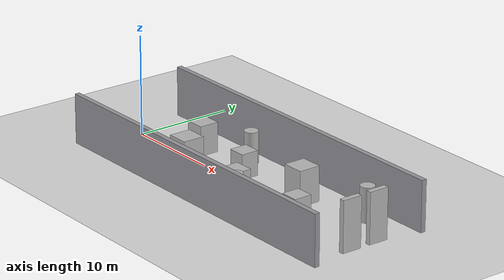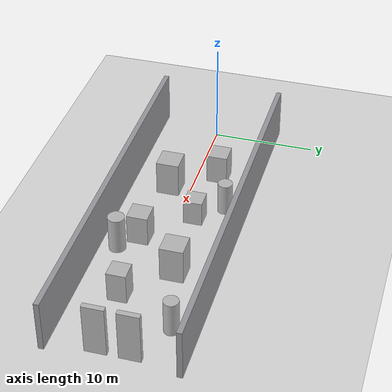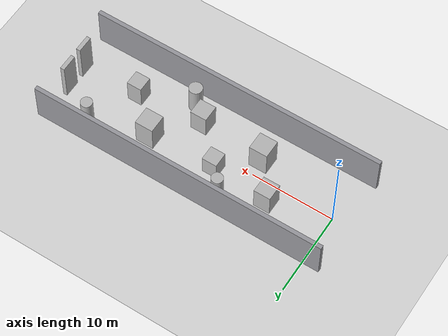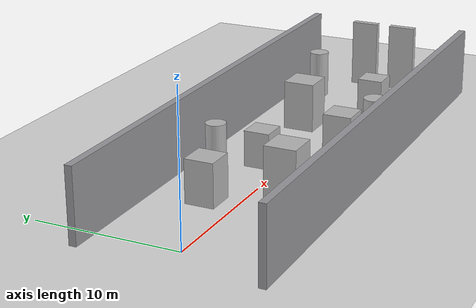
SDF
<sdf version="1.10">
 <world name="obstacle_avoidance">
  <physics type="ode">
   <max_step_size>0.0040000000000000001</max_step_size>
   <real_time_factor>1</real_time_factor>
   <real_time_update_rate>250</real_time_update_rate>
  </physics>
  <gravity>0 0 -9.8000000000000007</gravity>
  <magnetic_field>6.0000000000000002e-06 2.3e-05 -4.1999999999999998e-05</magnetic_field>
  <atmosphere type="adiabatic"/>
  <scene>
   <grid>true</grid>
   <ambient>0.449999988 0.449999988 0.449999988 1</ambient>
   <background>0.74000001 0.769999981 0.819999993 1</background>
   <shadows>true</shadows>
  </scene>
  <spherical_coordinates>
   <surface_model>EARTH_WGS84</surface_model>
   <world_frame_orientation>ENU</world_frame_orientation>
   <latitude_deg>47.397971057728974</latitude_deg>
   <longitude_deg>8.5461637398001464</longitude_deg>
   <elevation>0</elevation>
   <heading_deg>0</heading_deg>
  </spherical_coordinates>
  <model name="ground_plane">
   <static>true</static>
   <link name="link">
    <collision name="collision">
     <geometry><plane><normal>0 0 1</normal><size>1 1</size></plane></geometry>
    </collision>
    <visual name="visual">
     <geometry><plane><normal>0 0 1</normal><size>120 120</size></plane></geometry>
     <material>
      <ambient>0.850000024 0.850000024 0.850000024 1</ambient>
      <diffuse>0.850000024 0.850000024 0.850000024 1</diffuse>
      <specular>0.400000006 0.400000006 0.400000006 1</specular>
     </material>
    </visual>
    <inertial>
     <mass>1</mass>
     <inertia><ixx>1</ixx><ixy>0</ixy><ixz>0</ixz><iyy>1</iyy><iyz>0</iyz><izz>1</izz></inertia>
    </inertial>
   </link>
  </model>
  <model name="lane_left_wall">
   <static>true</static>
   <pose>16 6 2.5 0 0 0</pose>
   <link name="link">
    <collision name="collision"><geometry><box><size>36 0.5 5</size></box></geometry></collision>
    <visual name="visual">
     <geometry><box><size>36 0.5 5</size></box></geometry>
     <material>
      <ambient>0.5 0.5 0.519999981 1</ambient>
      <diffuse>0.600000024 0.600000024 0.620000005 1</diffuse>
     </material>
    </visual>
    <inertial>
     <mass>1</mass>
     <inertia><ixx>1</ixx><ixy>0</ixy><ixz>0</ixz><iyy>1</iyy><iyz>0</iyz><izz>1</izz></inertia>
    </inertial>
   </link>
  </model>
  <model name="lane_right_wall">
   <static>true</static>
   <pose>16 -6 2.5 0 0 0</pose>
   <link name="link">
    <collision name="collision"><geometry><box><size>36 0.5 5</size></box></geometry></collision>
    <visual name="visual">
     <geometry><box><size>36 0.5 5</size></box></geometry>
     <material>
      <ambient>0.5 0.5 0.519999981 1</ambient>
      <diffuse>0.600000024 0.600000024 0.620000005 1</diffuse>
     </material>
    </visual>
    <inertial>
     <mass>1</mass>
     <inertia><ixx>1</ixx><ixy>0</ixy><ixz>0</ixz><iyy>1</iyy><iyz>0</iyz><izz>1</izz></inertia>
    </inertial>
   </link>
  </model>
  <model name="block_01">
   <static>true</static>
   <pose>7 2.1000000000000001 1.5 0 0 0</pose>
   <link name="link">
    <collision name="collision"><geometry><box><size>2 2 3</size></box></geometry></collision>
    <visual name="visual"><geometry><box><size>2 2 3</size></box></geometry></visual>
    <inertial>
     <mass>1</mass>
     <inertia><ixx>1</ixx><ixy>0</ixy><ixz>0</ixz><iyy>1</iyy><iyz>0</iyz><izz>1</izz></inertia>
    </inertial>
   </link>
  </model>
  <model name="block_02">
   <static>true</static>
   <pose>10 -2 1.75 0 0 0</pose>
   <link name="link">
    <collision name="collision">
     <geometry><box><size>2.2000000000000002 2.2000000000000002 3.5</size></box></geometry>
    </collision>
    <visual name="visual">
     <geometry><box><size>2.2000000000000002 2.2000000000000002 3.5</size></box></geometry>
    </visual>
    <inertial>
     <mass>1</mass>
     <inertia><ixx>1</ixx><ixy>0</ixy><ixz>0</ixz><iyy>1</iyy><iyz>0</iyz><izz>1</izz></inertia>
    </inertial>
   </link>
  </model>
  <model name="block_03">
   <static>true</static>
   <pose>14 1.6000000000000001 1.25 0 0 0</pose>
   <link name="link">
    <collision name="collision"><geometry><box><size>1.8 1.8 2.5</size></box></geometry></collision>
    <visual name="visual"><geometry><box><size>1.8 1.8 2.5</size></box></geometry></visual>
    <inertial>
     <mass>1</mass>
     <inertia><ixx>1</ixx><ixy>0</ixy><ixz>0</ixz><iyy>1</iyy><iyz>0</iyz><izz>1</izz></inertia>
    </inertial>
   </link>
  </model>
  <model name="block_04">
   <static>true</static>
   <pose>18 -2.5 1.5 0 0 0</pose>
   <link name="link">
    <collision name="collision"><geometry><box><size>2 2 3</size></box></geometry></collision>
    <visual name="visual"><geometry><box><size>2 2 3</size></box></geometry></visual>
    <inertial>
     <mass>1</mass>
     <inertia><ixx>1</ixx><ixy>0</ixy><ixz>0</ixz><iyy>1</iyy><iyz>0</iyz><izz>1</izz></inertia>
    </inertial>
   </link>
  </model>
  <model name="block_05">
   <static>true</static>
   <pose>22 2 1.75 0 0 0</pose>
   <link name="link">
    <collision name="collision">
     <geometry><box><size>2.2000000000000002 2.2000000000000002 3.5</size></box></geometry>
    </collision>
    <visual name="visual">
     <geometry><box><size>2.2000000000000002 2.2000000000000002 3.5</size></box></geometry>
    </visual>
    <inertial>
     <mass>1</mass>
     <inertia><ixx>1</ixx><ixy>0</ixy><ixz>0</ixz><iyy>1</iyy><iyz>0</iyz><izz>1</izz></inertia>
    </inertial>
   </link>
  </model>
  <model name="block_06">
   <static>true</static>
   <pose>26 -1.8 1.5 0 0 0</pose>
   <link name="link">
    <collision name="collision"><geometry><box><size>1.8 1.8 3</size></box></geometry></collision>
    <visual name="visual"><geometry><box><size>1.8 1.8 3</size></box></geometry></visual>
    <inertial>
     <mass>1</mass>
     <inertia><ixx>1</ixx><ixy>0</ixy><ixz>0</ixz><iyy>1</iyy><iyz>0</iyz><izz>1</izz></inertia>
    </inertial>
   </link>
  </model>
  <model name="cyl_01">
   <static>true</static>
   <pose>12 4 1.6000000000000001 0 0 0</pose>
   <link name="link">
    <collision name="collision">
     <geometry>
      <cylinder><radius>0.69999999999999996</radius><length>3.2000000000000002</length></cylinder>
     </geometry>
    </collision>
    <visual name="visual">
     <geometry>
      <cylinder><radius>0.69999999999999996</radius><length>3.2000000000000002</length></cylinder>
     </geometry>
    </visual>
    <inertial>
     <mass>1</mass>
     <inertia><ixx>1</ixx><ixy>0</ixy><ixz>0</ixz><iyy>1</iyy><iyz>0</iyz><izz>1</izz></inertia>
    </inertial>
   </link>
  </model>
  <model name="cyl_02">
   <static>true</static>
   <pose>20 -4.0999999999999996 1.8 0 0 0</pose>
   <link name="link">
    <collision name="collision">
     <geometry>
      <cylinder><radius>0.80000000000000004</radius><length>3.6000000000000001</length></cylinder>
     </geometry>
    </collision>
    <visual name="visual">
     <geometry>
      <cylinder><radius>0.80000000000000004</radius><length>3.6000000000000001</length></cylinder>
     </geometry>
    </visual>
    <inertial>
     <mass>1</mass>
     <inertia><ixx>1</ixx><ixy>0</ixy><ixz>0</ixz><iyy>1</iyy><iyz>0</iyz><izz>1</izz></inertia>
    </inertial>
   </link>
  </model>
  <model name="cyl_03">
   <static>true</static>
   <pose>29 3.7999999999999998 1.7 0 0 0</pose>
   <link name="link">
    <collision name="collision">
     <geometry>
      <cylinder><radius>0.69999999999999996</radius><length>3.3999999999999999</length></cylinder>
     </geometry>
    </collision>
    <visual name="visual">
     <geometry>
      <cylinder><radius>0.69999999999999996</radius><length>3.3999999999999999</length></cylinder>
     </geometry>
    </visual>
    <inertial>
     <mass>1</mass>
     <inertia><ixx>1</ixx><ixy>0</ixy><ixz>0</ixz><iyy>1</iyy><iyz>0</iyz><izz>1</izz></inertia>
    </inertial>
   </link>
  </model>
  <model name="goal_gate_left">
   <static>true</static>
   <pose>33 1.5 2.5 0 0 0</pose>
   <link name="link">
    <collision name="collision"><geometry><box><size>0.5 2 5</size></box></geometry></collision>
    <visual name="visual"><geometry><box><size>0.5 2 5</size></box></geometry></visual>
    <inertial>
     <mass>1</mass>
     <inertia><ixx>1</ixx><ixy>0</ixy><ixz>0</ixz><iyy>1</iyy><iyz>0</iyz><izz>1</izz></inertia>
    </inertial>
   </link>
  </model>
  <model name="goal_gate_right">
   <static>true</static>
   <pose>33 -1.5 2.5 0 0 0</pose>
   <link name="link">
    <collision name="collision"><geometry><box><size>0.5 2 5</size></box></geometry></collision>
    <visual name="visual"><geometry><box><size>0.5 2 5</size></box></geometry></visual>
    <inertial>
     <mass>1</mass>
     <inertia><ixx>1</ixx><ixy>0</ixy><ixz>0</ixz><iyy>1</iyy><iyz>0</iyz><izz>1</izz></inertia>
    </inertial>
   </link>
  </model>
  <light name="sunUTC" type="directional">
   <pose>0 0 500 0 0 0</pose>
   <intensity>1</intensity>
   <direction>0.001 0.625 -0.78000000000000003</direction>
   <diffuse>0.899999976 0.899999976 0.899999976 1</diffuse>
   <specular>0.25 0.25 0.25 1</specular>
   <attenuation><range>2000</range><linear>0</linear><constant>1</constant><quadratic>0</quadratic></attenuation>
   <spot><inner_angle>0</inner_angle><outer_angle>0</outer_angle><falloff>0</falloff></spot>
  </light>
 </world>
</sdf>
